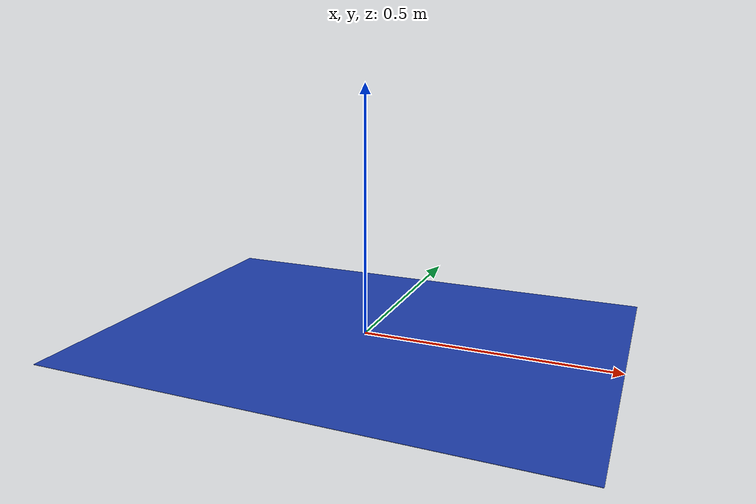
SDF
<?xml version="1.0" ?>
<sdf version="1.5">
  <model name="laser_image">
    <static>true</static>
    <link name="link">
      <visual name="visual">
        <cast_shadows>false</cast_shadows>
        <geometry>
          <plane>
            <normal>0 0 .1</normal>
            <size>1 0.75</size>
          </plane>
        </geometry>
        <material>
          <script>
            <uri>model://laser_image/materials/scripts</uri>
            <uri>model://laser_image/materials/textures</uri>
            <name>laser/blue</name>
          </script>
        </material>
      </visual>
    </link>
  </model>
</sdf>
